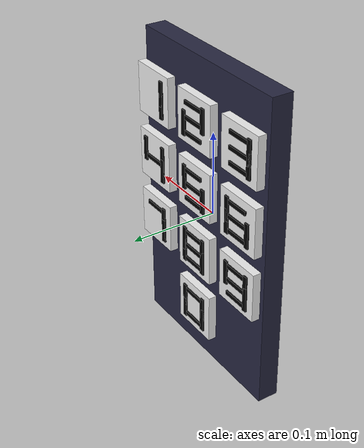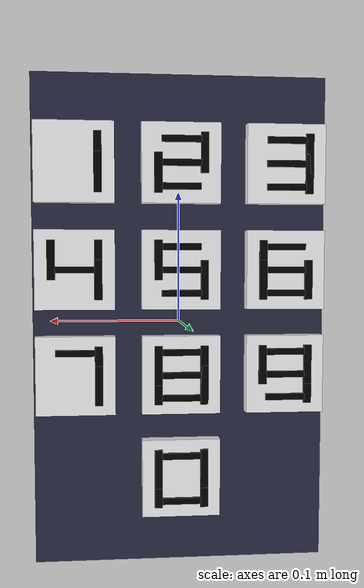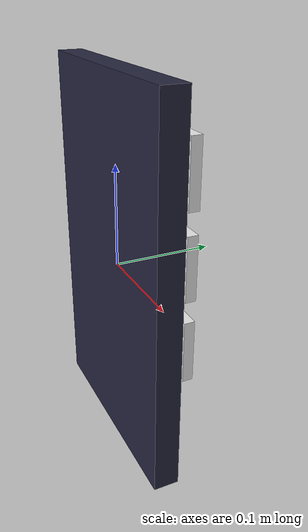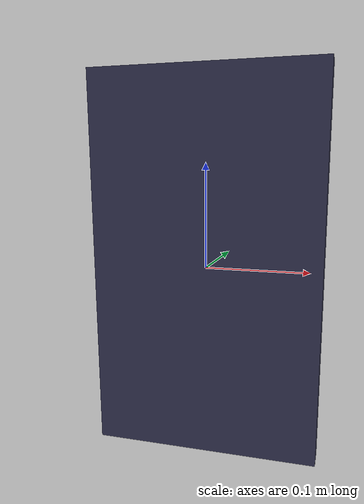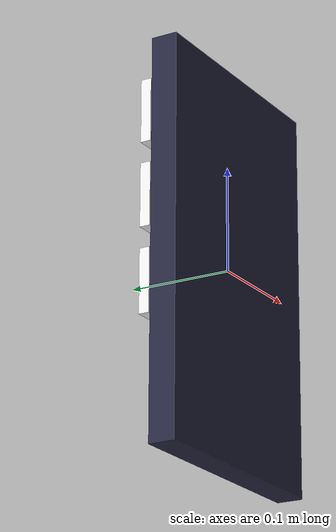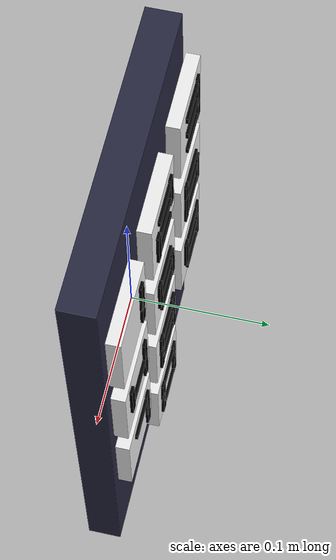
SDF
<?xml version="1.0" ?>
<sdf version="1.6">
  <model name="keypad">
    <static>true</static>

    <link name="panel">
      <pose>0 0 0 0 0 0</pose>
      <inertial>
        <mass>0.5</mass>
        <inertia>
          <ixx>0.004</ixx>
          <ixy>0</ixy>
          <ixz>0</ixz>
          <iyy>0.002</iyy>
          <iyz>0</iyz>
          <izz>0.004</izz>
        </inertia>
      </inertial>
      <collision name="collision">
        <geometry>
          <box>
            <size>0.225 0.025 0.375</size>
          </box>
        </geometry>
      </collision>
      <visual name="panel_visual">
        <geometry>
          <box>
            <size>0.225 0.025 0.375</size>
          </box>
        </geometry>
        <material>
          <ambient>0.1 0.1 0.18 1</ambient>
          <diffuse>0.15 0.15 0.25 1</diffuse>
          <specular>0.4 0.4 0.4 1</specular>
        </material>
      </visual>

      <!-- Button geometry -->
      <visual name="button_1">
        <pose>0.08 0.02 0.12 0 0 0</pose>
        <geometry>
          <box>
            <size>0.06 0.01 0.06</size>
          </box>
        </geometry>
        <material>
          <ambient>0.82 0.82 0.82 1</ambient>
          <diffuse>0.93 0.93 0.93 1</diffuse>
          <specular>0.5 0.5 0.5 1</specular>
        </material>
      </visual>
      <visual name="button_2">
        <pose>0.0 0.02 0.12 0 0 0</pose>
        <geometry>
          <box>
            <size>0.06 0.01 0.06</size>
          </box>
        </geometry>
        <material>
          <ambient>0.82 0.82 0.82 1</ambient>
          <diffuse>0.93 0.93 0.93 1</diffuse>
          <specular>0.5 0.5 0.5 1</specular>
        </material>
      </visual>
      <visual name="button_3">
        <pose>-0.08 0.02 0.12 0 0 0</pose>
        <geometry>
          <box>
            <size>0.06 0.01 0.06</size>
          </box>
        </geometry>
        <material>
          <ambient>0.82 0.82 0.82 1</ambient>
          <diffuse>0.93 0.93 0.93 1</diffuse>
          <specular>0.5 0.5 0.5 1</specular>
        </material>
      </visual>
      <visual name="button_4">
        <pose>0.08 0.02 0.04 0 0 0</pose>
        <geometry>
          <box>
            <size>0.06 0.01 0.06</size>
          </box>
        </geometry>
        <material>
          <ambient>0.82 0.82 0.82 1</ambient>
          <diffuse>0.93 0.93 0.93 1</diffuse>
          <specular>0.5 0.5 0.5 1</specular>
        </material>
      </visual>
      <visual name="button_5">
        <pose>0.0 0.02 0.04 0 0 0</pose>
        <geometry>
          <box>
            <size>0.06 0.01 0.06</size>
          </box>
        </geometry>
        <material>
          <ambient>0.82 0.82 0.82 1</ambient>
          <diffuse>0.93 0.93 0.93 1</diffuse>
          <specular>0.5 0.5 0.5 1</specular>
        </material>
      </visual>
      <visual name="button_6">
        <pose>-0.08 0.02 0.04 0 0 0</pose>
        <geometry>
          <box>
            <size>0.06 0.01 0.06</size>
          </box>
        </geometry>
        <material>
          <ambient>0.82 0.82 0.82 1</ambient>
          <diffuse>0.93 0.93 0.93 1</diffuse>
          <specular>0.5 0.5 0.5 1</specular>
        </material>
      </visual>
      <visual name="button_7">
        <pose>0.08 0.02 -0.04 0 0 0</pose>
        <geometry>
          <box>
            <size>0.06 0.01 0.06</size>
          </box>
        </geometry>
        <material>
          <ambient>0.82 0.82 0.82 1</ambient>
          <diffuse>0.93 0.93 0.93 1</diffuse>
          <specular>0.5 0.5 0.5 1</specular>
        </material>
      </visual>
      <visual name="button_8">
        <pose>0.0 0.02 -0.04 0 0 0</pose>
        <geometry>
          <box>
            <size>0.06 0.01 0.06</size>
          </box>
        </geometry>
        <material>
          <ambient>0.82 0.82 0.82 1</ambient>
          <diffuse>0.93 0.93 0.93 1</diffuse>
          <specular>0.5 0.5 0.5 1</specular>
        </material>
      </visual>
      <visual name="button_9">
        <pose>-0.08 0.02 -0.04 0 0 0</pose>
        <geometry>
          <box>
            <size>0.06 0.01 0.06</size>
          </box>
        </geometry>
        <material>
          <ambient>0.82 0.82 0.82 1</ambient>
          <diffuse>0.93 0.93 0.93 1</diffuse>
          <specular>0.5 0.5 0.5 1</specular>
        </material>
      </visual>
      <visual name="button_0">
        <pose>0.0 0.02 -0.12 0 0 0</pose>
        <geometry>
          <box>
            <size>0.06 0.01 0.06</size>
          </box>
        </geometry>
        <material>
          <ambient>0.82 0.82 0.82 1</ambient>
          <diffuse>0.93 0.93 0.93 1</diffuse>
          <specular>0.5 0.5 0.5 1</specular>
        </material>
      </visual>

      <!-- 7-segment style number overlays -->
      <!-- button 1 -->
      <visual name="button_1_seg_b">
        <pose>0.0625 0.026 0.1275 0 0 3.14159</pose>
        <geometry>
          <box>
            <size>0.006 0.002 0.03</size>
          </box>
        </geometry>
        <material>
          <ambient>0 0 0 1</ambient>
          <diffuse>0 0 0 1</diffuse>
        </material>
      </visual>
      <visual name="button_1_seg_c">
        <pose>0.0625 0.026 0.1125 0 0 3.14159</pose>
        <geometry>
          <box>
            <size>0.006 0.002 0.03</size>
          </box>
        </geometry>
        <material>
          <ambient>0 0 0 1</ambient>
          <diffuse>0 0 0 1</diffuse>
        </material>
      </visual>
      <!-- button 2 -->
      <visual name="button_2_seg_a">
        <pose>0 0.026 0.1375 0 0 3.14159</pose>
        <geometry>
          <box>
            <size>0.03 0.002 0.005</size>
          </box>
        </geometry>
        <material>
          <ambient>0 0 0 1</ambient>
          <diffuse>0 0 0 1</diffuse>
        </material>
      </visual>
      <visual name="button_2_seg_b">
        <pose>-0.0175 0.026 0.1275 0 0 3.14159</pose>
        <geometry>
          <box>
            <size>0.006 0.002 0.03</size>
          </box>
        </geometry>
        <material>
          <ambient>0 0 0 1</ambient>
          <diffuse>0 0 0 1</diffuse>
        </material>
      </visual>
      <visual name="button_2_seg_g">
        <pose>0 0.026 0.12 0 0 3.14159</pose>
        <geometry>
          <box>
            <size>0.03 0.002 0.005</size>
          </box>
        </geometry>
        <material>
          <ambient>0 0 0 1</ambient>
          <diffuse>0 0 0 1</diffuse>
        </material>
      </visual>
      <visual name="button_2_seg_e">
        <pose>0.0175 0.026 0.1125 0 0 3.14159</pose>
        <geometry>
          <box>
            <size>0.006 0.002 0.03</size>
          </box>
        </geometry>
        <material>
          <ambient>0 0 0 1</ambient>
          <diffuse>0 0 0 1</diffuse>
        </material>
      </visual>
      <visual name="button_2_seg_d">
        <pose>0 0.026 0.1025 0 0 3.14159</pose>
        <geometry>
          <box>
            <size>0.03 0.002 0.005</size>
          </box>
        </geometry>
        <material>
          <ambient>0 0 0 1</ambient>
          <diffuse>0 0 0 1</diffuse>
        </material>
      </visual>
      <!-- button 3 -->
      <visual name="button_3_seg_a">
        <pose>-0.08 0.026 0.1375 0 0 3.14159</pose>
        <geometry>
          <box>
            <size>0.03 0.002 0.005</size>
          </box>
        </geometry>
        <material>
          <ambient>0 0 0 1</ambient>
          <diffuse>0 0 0 1</diffuse>
        </material>
      </visual>
      <visual name="button_3_seg_b">
        <pose>-0.0975 0.026 0.1275 0 0 3.14159</pose>
        <geometry>
          <box>
            <size>0.006 0.002 0.03</size>
          </box>
        </geometry>
        <material>
          <ambient>0 0 0 1</ambient>
          <diffuse>0 0 0 1</diffuse>
        </material>
      </visual>
      <visual name="button_3_seg_g">
        <pose>-0.08 0.026 0.12 0 0 3.14159</pose>
        <geometry>
          <box>
            <size>0.03 0.002 0.005</size>
          </box>
        </geometry>
        <material>
          <ambient>0 0 0 1</ambient>
          <diffuse>0 0 0 1</diffuse>
        </material>
      </visual>
      <visual name="button_3_seg_c">
        <pose>-0.0975 0.026 0.1125 0 0 3.14159</pose>
        <geometry>
          <box>
            <size>0.006 0.002 0.03</size>
          </box>
        </geometry>
        <material>
          <ambient>0 0 0 1</ambient>
          <diffuse>0 0 0 1</diffuse>
        </material>
      </visual>
      <visual name="button_3_seg_d">
        <pose>-0.08 0.026 0.1025 0 0 3.14159</pose>
        <geometry>
          <box>
            <size>0.03 0.002 0.005</size>
          </box>
        </geometry>
        <material>
          <ambient>0 0 0 1</ambient>
          <diffuse>0 0 0 1</diffuse>
        </material>
      </visual>
      <!-- button 4 -->
      <visual name="button_4_seg_f">
        <pose>0.0975 0.026 0.0475 0 0 3.14159</pose>
        <geometry>
          <box>
            <size>0.006 0.002 0.03</size>
          </box>
        </geometry>
        <material>
          <ambient>0 0 0 1</ambient>
          <diffuse>0 0 0 1</diffuse>
        </material>
      </visual>
      <visual name="button_4_seg_g">
        <pose>0.08 0.026 0.04 0 0 3.14159</pose>
        <geometry>
          <box>
            <size>0.03 0.002 0.005</size>
          </box>
        </geometry>
        <material>
          <ambient>0 0 0 1</ambient>
          <diffuse>0 0 0 1</diffuse>
        </material>
      </visual>
      <visual name="button_4_seg_b">
        <pose>0.0625 0.026 0.0475 0 0 3.14159</pose>
        <geometry>
          <box>
            <size>0.006 0.002 0.03</size>
          </box>
        </geometry>
        <material>
          <ambient>0 0 0 1</ambient>
          <diffuse>0 0 0 1</diffuse>
        </material>
      </visual>
      <visual name="button_4_seg_c">
        <pose>0.0625 0.026 0.0325 0 0 3.14159</pose>
        <geometry>
          <box>
            <size>0.006 0.002 0.03</size>
          </box>
        </geometry>
        <material>
          <ambient>0 0 0 1</ambient>
          <diffuse>0 0 0 1</diffuse>
        </material>
      </visual>
      <!-- button 5 -->
      <visual name="button_5_seg_a">
        <pose>0 0.026 0.0575 0 0 3.14159</pose>
        <geometry>
          <box>
            <size>0.03 0.002 0.005</size>
          </box>
        </geometry>
        <material>
          <ambient>0 0 0 1</ambient>
          <diffuse>0 0 0 1</diffuse>
        </material>
      </visual>
      <visual name="button_5_seg_f">
        <pose>0.0175 0.026 0.0475 0 0 3.14159</pose>
        <geometry>
          <box>
            <size>0.006 0.002 0.03</size>
          </box>
        </geometry>
        <material>
          <ambient>0 0 0 1</ambient>
          <diffuse>0 0 0 1</diffuse>
        </material>
      </visual>
      <visual name="button_5_seg_g">
        <pose>0 0.026 0.04 0 0 3.14159</pose>
        <geometry>
          <box>
            <size>0.03 0.002 0.005</size>
          </box>
        </geometry>
        <material>
          <ambient>0 0 0 1</ambient>
          <diffuse>0 0 0 1</diffuse>
        </material>
      </visual>
      <visual name="button_5_seg_c">
        <pose>-0.0175 0.026 0.0325 0 0 3.14159</pose>
        <geometry>
          <box>
            <size>0.006 0.002 0.03</size>
          </box>
        </geometry>
        <material>
          <ambient>0 0 0 1</ambient>
          <diffuse>0 0 0 1</diffuse>
        </material>
      </visual>
      <visual name="button_5_seg_d">
        <pose>0 0.026 0.0225 0 0 3.14159</pose>
        <geometry>
          <box>
            <size>0.03 0.002 0.005</size>
          </box>
        </geometry>
        <material>
          <ambient>0 0 0 1</ambient>
          <diffuse>0 0 0 1</diffuse>
        </material>
      </visual>
      <!-- button 6 -->
      <visual name="button_6_seg_a">
        <pose>-0.08 0.026 0.0575 0 0 3.14159</pose>
        <geometry>
          <box>
            <size>0.03 0.002 0.005</size>
          </box>
        </geometry>
        <material>
          <ambient>0 0 0 1</ambient>
          <diffuse>0 0 0 1</diffuse>
        </material>
      </visual>
      <visual name="button_6_seg_f">
        <pose>-0.0625 0.026 0.0475 0 0 3.14159</pose>
        <geometry>
          <box>
            <size>0.006 0.002 0.03</size>
          </box>
        </geometry>
        <material>
          <ambient>0 0 0 1</ambient>
          <diffuse>0 0 0 1</diffuse>
        </material>
      </visual>
      <visual name="button_6_seg_g">
        <pose>-0.08 0.026 0.04 0 0 3.14159</pose>
        <geometry>
          <box>
            <size>0.03 0.002 0.005</size>
          </box>
        </geometry>
        <material>
          <ambient>0 0 0 1</ambient>
          <diffuse>0 0 0 1</diffuse>
        </material>
      </visual>
      <visual name="button_6_seg_e">
        <pose>-0.0625 0.026 0.0325 0 0 3.14159</pose>
        <geometry>
          <box>
            <size>0.006 0.002 0.03</size>
          </box>
        </geometry>
        <material>
          <ambient>0 0 0 1</ambient>
          <diffuse>0 0 0 1</diffuse>
        </material>
      </visual>
      <visual name="button_6_seg_c">
        <pose>-0.0975 0.026 0.0325 0 0 3.14159</pose>
        <geometry>
          <box>
            <size>0.006 0.002 0.03</size>
          </box>
        </geometry>
        <material>
          <ambient>0 0 0 1</ambient>
          <diffuse>0 0 0 1</diffuse>
        </material>
      </visual>
      <visual name="button_6_seg_d">
        <pose>-0.08 0.026 0.0225 0 0 3.14159</pose>
        <geometry>
          <box>
            <size>0.03 0.002 0.005</size>
          </box>
        </geometry>
        <material>
          <ambient>0 0 0 1</ambient>
          <diffuse>0 0 0 1</diffuse>
        </material>
      </visual>
      <!-- button 7 -->
      <visual name="button_7_seg_a">
        <pose>0.08 0.026 -0.0225 0 0 3.14159</pose>
        <geometry>
          <box>
            <size>0.03 0.002 0.005</size>
          </box>
        </geometry>
        <material>
          <ambient>0 0 0 1</ambient>
          <diffuse>0 0 0 1</diffuse>
        </material>
      </visual>
      <visual name="button_7_seg_b">
        <pose>0.0625 0.026 -0.0325 0 0 3.14159</pose>
        <geometry>
          <box>
            <size>0.006 0.002 0.03</size>
          </box>
        </geometry>
        <material>
          <ambient>0 0 0 1</ambient>
          <diffuse>0 0 0 1</diffuse>
        </material>
      </visual>
      <visual name="button_7_seg_c">
        <pose>0.0625 0.026 -0.0475 0 0 3.14159</pose>
        <geometry>
          <box>
            <size>0.006 0.002 0.03</size>
          </box>
        </geometry>
        <material>
          <ambient>0 0 0 1</ambient>
          <diffuse>0 0 0 1</diffuse>
        </material>
      </visual>
      <!-- button 8 -->
      <visual name="button_8_seg_a">
        <pose>0 0.026 -0.0225 0 0 3.14159</pose>
        <geometry>
          <box>
            <size>0.03 0.002 0.005</size>
          </box>
        </geometry>
        <material>
          <ambient>0 0 0 1</ambient>
          <diffuse>0 0 0 1</diffuse>
        </material>
      </visual>
      <visual name="button_8_seg_b">
        <pose>-0.0175 0.026 -0.0325 0 0 3.14159</pose>
        <geometry>
          <box>
            <size>0.006 0.002 0.03</size>
          </box>
        </geometry>
        <material>
          <ambient>0 0 0 1</ambient>
          <diffuse>0 0 0 1</diffuse>
        </material>
      </visual>
      <visual name="button_8_seg_c">
        <pose>-0.0175 0.026 -0.0475 0 0 3.14159</pose>
        <geometry>
          <box>
            <size>0.006 0.002 0.03</size>
          </box>
        </geometry>
        <material>
          <ambient>0 0 0 1</ambient>
          <diffuse>0 0 0 1</diffuse>
        </material>
      </visual>
      <visual name="button_8_seg_d">
        <pose>0 0.026 -0.0575 0 0 3.14159</pose>
        <geometry>
          <box>
            <size>0.03 0.002 0.005</size>
          </box>
        </geometry>
        <material>
          <ambient>0 0 0 1</ambient>
          <diffuse>0 0 0 1</diffuse>
        </material>
      </visual>
      <visual name="button_8_seg_e">
        <pose>0.0175 0.026 -0.0475 0 0 3.14159</pose>
        <geometry>
          <box>
            <size>0.006 0.002 0.03</size>
          </box>
        </geometry>
        <material>
          <ambient>0 0 0 1</ambient>
          <diffuse>0 0 0 1</diffuse>
        </material>
      </visual>
      <visual name="button_8_seg_f">
        <pose>0.0175 0.026 -0.0325 0 0 3.14159</pose>
        <geometry>
          <box>
            <size>0.006 0.002 0.03</size>
          </box>
        </geometry>
        <material>
          <ambient>0 0 0 1</ambient>
          <diffuse>0 0 0 1</diffuse>
        </material>
      </visual>
      <visual name="button_8_seg_g">
        <pose>0 0.026 -0.04 0 0 3.14159</pose>
        <geometry>
          <box>
            <size>0.03 0.002 0.005</size>
          </box>
        </geometry>
        <material>
          <ambient>0 0 0 1</ambient>
          <diffuse>0 0 0 1</diffuse>
        </material>
      </visual>
      <!-- button 9 -->
      <visual name="button_9_seg_a">
        <pose>-0.08 0.026 -0.0225 0 0 3.14159</pose>
        <geometry>
          <box>
            <size>0.03 0.002 0.005</size>
          </box>
        </geometry>
        <material>
          <ambient>0 0 0 1</ambient>
          <diffuse>0 0 0 1</diffuse>
        </material>
      </visual>
      <visual name="button_9_seg_b">
        <pose>-0.0975 0.026 -0.0325 0 0 3.14159</pose>
        <geometry>
          <box>
            <size>0.006 0.002 0.03</size>
          </box>
        </geometry>
        <material>
          <ambient>0 0 0 1</ambient>
          <diffuse>0 0 0 1</diffuse>
        </material>
      </visual>
      <visual name="button_9_seg_c">
        <pose>-0.0975 0.026 -0.0475 0 0 3.14159</pose>
        <geometry>
          <box>
            <size>0.006 0.002 0.03</size>
          </box>
        </geometry>
        <material>
          <ambient>0 0 0 1</ambient>
          <diffuse>0 0 0 1</diffuse>
        </material>
      </visual>
      <visual name="button_9_seg_d">
        <pose>-0.08 0.026 -0.0575 0 0 3.14159</pose>
        <geometry>
          <box>
            <size>0.03 0.002 0.005</size>
          </box>
        </geometry>
        <material>
          <ambient>0 0 0 1</ambient>
          <diffuse>0 0 0 1</diffuse>
        </material>
      </visual>
      <visual name="button_9_seg_f">
        <pose>-0.0625 0.026 -0.0325 0 0 3.14159</pose>
        <geometry>
          <box>
            <size>0.006 0.002 0.03</size>
          </box>
        </geometry>
        <material>
          <ambient>0 0 0 1</ambient>
          <diffuse>0 0 0 1</diffuse>
        </material>
      </visual>
      <visual name="button_9_seg_g">
        <pose>-0.08 0.026 -0.04 0 0 3.14159</pose>
        <geometry>
          <box>
            <size>0.03 0.002 0.005</size>
          </box>
        </geometry>
        <material>
          <ambient>0 0 0 1</ambient>
          <diffuse>0 0 0 1</diffuse>
        </material>
      </visual>
      <!-- button 0 -->
      <visual name="button_0_seg_a">
        <pose>0 0.026 -0.1025 0 0 3.14159</pose>
        <geometry>
          <box>
            <size>0.03 0.002 0.005</size>
          </box>
        </geometry>
        <material>
          <ambient>0 0 0 1</ambient>
          <diffuse>0 0 0 1</diffuse>
        </material>
      </visual>
      <visual name="button_0_seg_b">
        <pose>-0.0175 0.026 -0.1125 0 0 3.14159</pose>
        <geometry>
          <box>
            <size>0.006 0.002 0.03</size>
          </box>
        </geometry>
        <material>
          <ambient>0 0 0 1</ambient>
          <diffuse>0 0 0 1</diffuse>
        </material>
      </visual>
      <visual name="button_0_seg_c">
        <pose>-0.0175 0.026 -0.1275 0 0 3.14159</pose>
        <geometry>
          <box>
            <size>0.006 0.002 0.03</size>
          </box>
        </geometry>
        <material>
          <ambient>0 0 0 1</ambient>
          <diffuse>0 0 0 1</diffuse>
        </material>
      </visual>
      <visual name="button_0_seg_d">
        <pose>0 0.026 -0.1375 0 0 3.14159</pose>
        <geometry>
          <box>
            <size>0.03 0.002 0.005</size>
          </box>
        </geometry>
        <material>
          <ambient>0 0 0 1</ambient>
          <diffuse>0 0 0 1</diffuse>
        </material>
      </visual>
      <visual name="button_0_seg_e">
        <pose>0.0175 0.026 -0.1275 0 0 3.14159</pose>
        <geometry>
          <box>
            <size>0.006 0.002 0.03</size>
          </box>
        </geometry>
        <material>
          <ambient>0 0 0 1</ambient>
          <diffuse>0 0 0 1</diffuse>
        </material>
      </visual>
      <visual name="button_0_seg_f">
        <pose>0.0175 0.026 -0.1125 0 0 3.14159</pose>
        <geometry>
          <box>
            <size>0.006 0.002 0.03</size>
          </box>
        </geometry>
        <material>
          <ambient>0 0 0 1</ambient>
          <diffuse>0 0 0 1</diffuse>
        </material>
      </visual>
    </link>
  </model>
</sdf>
